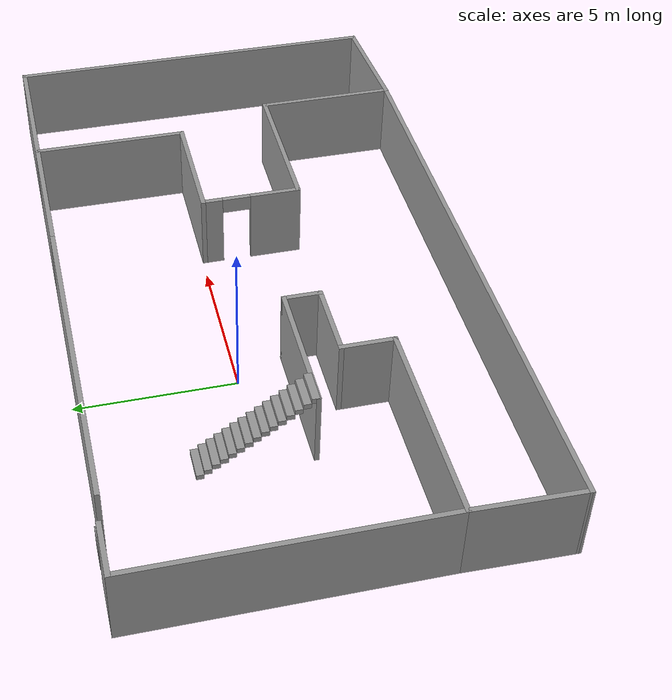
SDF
<?xml version='1.0'?>
<sdf version='1.6'>
  <model name='sample_room'>
    <pose frame=''>3.06893 -1.33194 0 0 -0 0</pose>
    <link name='Stairs_0'>
      <visual name='Stairs_0_Visual_0'>
        <pose frame=''>-5.98337 3.1343 0.083333 0 -0 0</pose>
        <geometry>
          <box>
            <size>1 0.233333 0.166667</size>
          </box>
        </geometry>
        <material>
          <script>
            <uri>file://media/materials/scripts/gazebo.material</uri>
            <name>Gazebo/Grey</name>
          </script>
          <ambient>1 1 1 1</ambient>
        </material>
      </visual>
      <collision name='Stairs_0_Collision_0'>
        <geometry>
          <box>
            <size>1 0.233333 0.166667</size>
          </box>
        </geometry>
        <pose frame=''>-5.98337 3.1343 0.083333 0 -0 0</pose>
      </collision>
      <visual name='Stairs_0_Visual_1'>
        <pose frame=''>-5.98337 2.90096 0.25 0 -0 0</pose>
        <geometry>
          <box>
            <size>1 0.233333 0.166667</size>
          </box>
        </geometry>
        <material>
          <script>
            <uri>file://media/materials/scripts/gazebo.material</uri>
            <name>Gazebo/Grey</name>
          </script>
          <ambient>1 1 1 1</ambient>
        </material>
      </visual>
      <collision name='Stairs_0_Collision_1'>
        <geometry>
          <box>
            <size>1 0.233333 0.166667</size>
          </box>
        </geometry>
        <pose frame=''>-5.98337 2.90096 0.25 0 -0 0</pose>
      </collision>
      <visual name='Stairs_0_Visual_2'>
        <pose frame=''>-5.98337 2.66763 0.416667 0 -0 0</pose>
        <geometry>
          <box>
            <size>1 0.233333 0.166667</size>
          </box>
        </geometry>
        <material>
          <script>
            <uri>file://media/materials/scripts/gazebo.material</uri>
            <name>Gazebo/Grey</name>
          </script>
          <ambient>1 1 1 1</ambient>
        </material>
      </visual>
      <collision name='Stairs_0_Collision_2'>
        <geometry>
          <box>
            <size>1 0.233333 0.166667</size>
          </box>
        </geometry>
        <pose frame=''>-5.98337 2.66763 0.416667 0 -0 0</pose>
      </collision>
      <visual name='Stairs_0_Visual_3'>
        <pose frame=''>-5.98337 2.4343 0.583333 0 -0 0</pose>
        <geometry>
          <box>
            <size>1 0.233333 0.166667</size>
          </box>
        </geometry>
        <material>
          <script>
            <uri>file://media/materials/scripts/gazebo.material</uri>
            <name>Gazebo/Grey</name>
          </script>
          <ambient>1 1 1 1</ambient>
        </material>
      </visual>
      <collision name='Stairs_0_Collision_3'>
        <geometry>
          <box>
            <size>1 0.233333 0.166667</size>
          </box>
        </geometry>
        <pose frame=''>-5.98337 2.4343 0.583333 0 -0 0</pose>
      </collision>
      <visual name='Stairs_0_Visual_4'>
        <pose frame=''>-5.98337 2.20097 0.75 0 -0 0</pose>
        <geometry>
          <box>
            <size>1 0.233333 0.166667</size>
          </box>
        </geometry>
        <material>
          <script>
            <uri>file://media/materials/scripts/gazebo.material</uri>
            <name>Gazebo/Grey</name>
          </script>
          <ambient>1 1 1 1</ambient>
        </material>
      </visual>
      <collision name='Stairs_0_Collision_4'>
        <geometry>
          <box>
            <size>1 0.233333 0.166667</size>
          </box>
        </geometry>
        <pose frame=''>-5.98337 2.20097 0.75 0 -0 0</pose>
      </collision>
      <visual name='Stairs_0_Visual_5'>
        <pose frame=''>-5.98337 1.96763 0.916667 0 -0 0</pose>
        <geometry>
          <box>
            <size>1 0.233333 0.166667</size>
          </box>
        </geometry>
        <material>
          <script>
            <uri>file://media/materials/scripts/gazebo.material</uri>
            <name>Gazebo/Grey</name>
          </script>
          <ambient>1 1 1 1</ambient>
        </material>
      </visual>
      <collision name='Stairs_0_Collision_5'>
        <geometry>
          <box>
            <size>1 0.233333 0.166667</size>
          </box>
        </geometry>
        <pose frame=''>-5.98337 1.96763 0.916667 0 -0 0</pose>
      </collision>
      <visual name='Stairs_0_Visual_6'>
        <pose frame=''>-5.98337 1.7343 1.08333 0 -0 0</pose>
        <geometry>
          <box>
            <size>1 0.233333 0.166667</size>
          </box>
        </geometry>
        <material>
          <script>
            <uri>file://media/materials/scripts/gazebo.material</uri>
            <name>Gazebo/Grey</name>
          </script>
          <ambient>1 1 1 1</ambient>
        </material>
      </visual>
      <collision name='Stairs_0_Collision_6'>
        <geometry>
          <box>
            <size>1 0.233333 0.166667</size>
          </box>
        </geometry>
        <pose frame=''>-5.98337 1.7343 1.08333 0 -0 0</pose>
      </collision>
      <visual name='Stairs_0_Visual_7'>
        <pose frame=''>-5.98337 1.50097 1.25 0 -0 0</pose>
        <geometry>
          <box>
            <size>1 0.233333 0.166667</size>
          </box>
        </geometry>
        <material>
          <script>
            <uri>file://media/materials/scripts/gazebo.material</uri>
            <name>Gazebo/Grey</name>
          </script>
          <ambient>1 1 1 1</ambient>
        </material>
      </visual>
      <collision name='Stairs_0_Collision_7'>
        <geometry>
          <box>
            <size>1 0.233333 0.166667</size>
          </box>
        </geometry>
        <pose frame=''>-5.98337 1.50097 1.25 0 -0 0</pose>
      </collision>
      <visual name='Stairs_0_Visual_8'>
        <pose frame=''>-5.98337 1.26763 1.41667 0 -0 0</pose>
        <geometry>
          <box>
            <size>1 0.233333 0.166667</size>
          </box>
        </geometry>
        <material>
          <script>
            <uri>file://media/materials/scripts/gazebo.material</uri>
            <name>Gazebo/Grey</name>
          </script>
          <ambient>1 1 1 1</ambient>
        </material>
      </visual>
      <collision name='Stairs_0_Collision_8'>
        <geometry>
          <box>
            <size>1 0.233333 0.166667</size>
          </box>
        </geometry>
        <pose frame=''>-5.98337 1.26763 1.41667 0 -0 0</pose>
      </collision>
      <visual name='Stairs_0_Visual_9'>
        <pose frame=''>-5.98337 1.0343 1.58333 0 -0 0</pose>
        <geometry>
          <box>
            <size>1 0.233333 0.166667</size>
          </box>
        </geometry>
        <material>
          <script>
            <uri>file://media/materials/scripts/gazebo.material</uri>
            <name>Gazebo/Grey</name>
          </script>
          <ambient>1 1 1 1</ambient>
        </material>
      </visual>
      <collision name='Stairs_0_Collision_9'>
        <geometry>
          <box>
            <size>1 0.233333 0.166667</size>
          </box>
        </geometry>
        <pose frame=''>-5.98337 1.0343 1.58333 0 -0 0</pose>
      </collision>
      <visual name='Stairs_0_Visual_10'>
        <pose frame=''>-5.98337 0.800965 1.75 0 -0 0</pose>
        <geometry>
          <box>
            <size>1 0.233333 0.166667</size>
          </box>
        </geometry>
        <material>
          <script>
            <uri>file://media/materials/scripts/gazebo.material</uri>
            <name>Gazebo/Grey</name>
          </script>
          <ambient>1 1 1 1</ambient>
        </material>
      </visual>
      <collision name='Stairs_0_Collision_10'>
        <geometry>
          <box>
            <size>1 0.233333 0.166667</size>
          </box>
        </geometry>
        <pose frame=''>-5.98337 0.800965 1.75 0 -0 0</pose>
      </collision>
      <visual name='Stairs_0_Visual_11'>
        <pose frame=''>-5.98337 0.567632 1.91667 0 -0 0</pose>
        <geometry>
          <box>
            <size>1 0.233333 0.166667</size>
          </box>
        </geometry>
        <material>
          <script>
            <uri>file://media/materials/scripts/gazebo.material</uri>
            <name>Gazebo/Grey</name>
          </script>
          <ambient>1 1 1 1</ambient>
        </material>
      </visual>
      <collision name='Stairs_0_Collision_11'>
        <geometry>
          <box>
            <size>1 0.233333 0.166667</size>
          </box>
        </geometry>
        <pose frame=''>-5.98337 0.567632 1.91667 0 -0 0</pose>
      </collision>
      <visual name='Stairs_0_Visual_12'>
        <pose frame=''>-5.98337 0.334299 2.08333 0 -0 0</pose>
        <geometry>
          <box>
            <size>1 0.233333 0.166667</size>
          </box>
        </geometry>
        <material>
          <script>
            <uri>file://media/materials/scripts/gazebo.material</uri>
            <name>Gazebo/Grey</name>
          </script>
          <ambient>1 1 1 1</ambient>
        </material>
      </visual>
      <collision name='Stairs_0_Collision_12'>
        <geometry>
          <box>
            <size>1 0.233333 0.166667</size>
          </box>
        </geometry>
        <pose frame=''>-5.98337 0.334299 2.08333 0 -0 0</pose>
      </collision>
      <visual name='Stairs_0_Visual_13'>
        <pose frame=''>-5.98337 0.100965 2.25 0 -0 0</pose>
        <geometry>
          <box>
            <size>1 0.233333 0.166667</size>
          </box>
        </geometry>
        <material>
          <script>
            <uri>file://media/materials/scripts/gazebo.material</uri>
            <name>Gazebo/Grey</name>
          </script>
          <ambient>1 1 1 1</ambient>
        </material>
      </visual>
      <collision name='Stairs_0_Collision_13'>
        <geometry>
          <box>
            <size>1 0.233333 0.166667</size>
          </box>
        </geometry>
        <pose frame=''>-5.98337 0.100965 2.25 0 -0 0</pose>
      </collision>
      <visual name='Stairs_0_Visual_14'>
        <pose frame=''>-5.98337 -0.132368 2.41667 0 -0 0</pose>
        <geometry>
          <box>
            <size>1 0.233333 0.166667</size>
          </box>
        </geometry>
        <material>
          <script>
            <uri>file://media/materials/scripts/gazebo.material</uri>
            <name>Gazebo/Grey</name>
          </script>
          <ambient>1 1 1 1</ambient>
        </material>
      </visual>
      <collision name='Stairs_0_Collision_14'>
        <geometry>
          <box>
            <size>1 0.233333 0.166667</size>
          </box>
        </geometry>
        <pose frame=''>-5.98337 -0.132368 2.41667 0 -0 0</pose>
      </collision>
    </link>
    <link name='Wall_1'>
      <collision name='Wall_1_Collision'>
        <geometry>
          <box>
            <size>4.25 0.15 2.5</size>
          </box>
        </geometry>
        <pose frame=''>0 0 1.25 0 -0 0</pose>
      </collision>
      <visual name='Wall_1_Visual'>
        <pose frame=''>0 0 1.25 0 -0 0</pose>
        <geometry>
          <box>
            <size>4.25 0.15 2.5</size>
          </box>
        </geometry>
        <material>
          <script>
            <uri>file://media/materials/scripts/gazebo.material</uri>
            <name>Gazebo/Grey</name>
          </script>
          <ambient>1 1 1 1</ambient>
        </material>
      </visual>
      <pose frame=''>-4.37477 -0.208857 0 0 -0 0</pose>
    </link>
    <link name='Wall_10'>
      <collision name='Wall_10_Collision'>
        <geometry>
          <box>
            <size>4.75 0.15 2.5</size>
          </box>
        </geometry>
        <pose frame=''>0 0 1.25 0 -0 0</pose>
      </collision>
      <visual name='Wall_10_Visual'>
        <pose frame=''>0 0 1.25 0 -0 0</pose>
        <geometry>
          <box>
            <size>4.75 0.15 2.5</size>
          </box>
        </geometry>
        <material>
          <script>
            <uri>file://media/materials/scripts/gazebo.material</uri>
            <name>Gazebo/Grey</name>
          </script>
          <ambient>1 1 1 1</ambient>
        </material>
      </visual>
      <pose frame=''>4.19884 6.1129 0 0 -0 0</pose>
    </link>
    <link name='Wall_11'>
      <collision name='Wall_11_Collision'>
        <geometry>
          <box>
            <size>5 0.15 2.5</size>
          </box>
        </geometry>
        <pose frame=''>0 0 1.25 0 -0 0</pose>
      </collision>
      <visual name='Wall_11_Visual'>
        <pose frame=''>0 0 1.25 0 -0 0</pose>
        <geometry>
          <box>
            <size>5 0.15 2.5</size>
          </box>
        </geometry>
        <material>
          <script>
            <uri>file://media/materials/scripts/gazebo.material</uri>
            <name>Gazebo/Grey</name>
          </script>
          <ambient>1 1 1 1</ambient>
        </material>
      </visual>
      <pose frame=''>6.49884 3.6879 0 0 0 -1.5708</pose>
    </link>
    <link name='Wall_12'>
      <collision name='Wall_12_Collision'>
        <geometry>
          <box>
            <size>4 0.15 2.5</size>
          </box>
        </geometry>
        <pose frame=''>0 0 1.25 0 -0 0</pose>
      </collision>
      <visual name='Wall_12_Visual'>
        <pose frame=''>0 0 1.25 0 -0 0</pose>
        <geometry>
          <box>
            <size>4 0.15 2.5</size>
          </box>
        </geometry>
        <material>
          <script>
            <uri>file://media/materials/scripts/gazebo.material</uri>
            <name>Gazebo/Grey</name>
          </script>
          <ambient>1 1 1 1</ambient>
        </material>
      </visual>
      <pose frame=''>4.57384 1.2629 0 0 -0 3.14159</pose>
    </link>
    <link name='Wall_13'>
      <pose frame=''>2.64884 -0.287099 0 0 0 -1.5708</pose>
      <visual name='Wall_13_Visual_0'>
        <pose frame=''>-1.27438 0 1.25 0 -0 0</pose>
        <geometry>
          <box>
            <size>0.701241 0.15 2.5</size>
          </box>
        </geometry>
        <material>
          <script>
            <uri>file://media/materials/scripts/gazebo.material</uri>
            <name>Gazebo/Grey</name>
          </script>
          <ambient>1 1 1 1</ambient>
        </material>
      </visual>
      <collision name='Wall_13_Collision_0'>
        <geometry>
          <box>
            <size>0.701241 0.15 2.5</size>
          </box>
        </geometry>
        <pose frame=''>-1.27438 0 1.25 0 -0 0</pose>
      </collision>
      <visual name='Wall_13_Visual_1'>
        <pose frame=''>0.80062 0 1.25 0 -0 0</pose>
        <geometry>
          <box>
            <size>1.64876 0.15 2.5</size>
          </box>
        </geometry>
        <material>
          <script>
            <uri>file://media/materials/scripts/gazebo.material</uri>
            <name>Gazebo/Grey</name>
          </script>
          <ambient>1 1 1 1</ambient>
        </material>
      </visual>
      <collision name='Wall_13_Collision_1'>
        <geometry>
          <box>
            <size>1.64876 0.15 2.5</size>
          </box>
        </geometry>
        <pose frame=''>0.80062 0 1.25 0 -0 0</pose>
      </collision>
      <visual name='Wall_13_Visual_2'>
        <pose frame=''>-0.473759 0 2.25 0 -0 0</pose>
        <geometry>
          <box>
            <size>0.9 0.15 0.5</size>
          </box>
        </geometry>
        <material>
          <script>
            <uri>file://media/materials/scripts/gazebo.material</uri>
            <name>Gazebo/Grey</name>
          </script>
          <ambient>1 1 1 1</ambient>
        </material>
      </visual>
      <collision name='Wall_13_Collision_2'>
        <geometry>
          <box>
            <size>0.9 0.15 0.5</size>
          </box>
        </geometry>
        <pose frame=''>-0.473759 0 2.25 0 -0 0</pose>
      </collision>
    </link>
    <link name='Wall_14'>
      <collision name='Wall_14_Collision'>
        <geometry>
          <box>
            <size>5 0.15 2.5</size>
          </box>
        </geometry>
        <pose frame=''>0 0 1.25 0 -0 0</pose>
      </collision>
      <visual name='Wall_14_Visual'>
        <pose frame=''>0 0 1.25 0 -0 0</pose>
        <geometry>
          <box>
            <size>5 0.15 2.5</size>
          </box>
        </geometry>
        <material>
          <script>
            <uri>file://media/materials/scripts/gazebo.material</uri>
            <name>Gazebo/Grey</name>
          </script>
          <ambient>1 1 1 1</ambient>
        </material>
      </visual>
      <pose frame=''>5.07384 -1.8371 0 0 -0 0</pose>
    </link>
    <link name='Wall_15'>
      <collision name='Wall_15_Collision'>
        <geometry>
          <box>
            <size>4.5 0.15 2.5</size>
          </box>
        </geometry>
        <pose frame=''>0 0 1.25 0 -0 0</pose>
      </collision>
      <visual name='Wall_15_Visual'>
        <pose frame=''>0 0 1.25 0 -0 0</pose>
        <geometry>
          <box>
            <size>4.5 0.15 2.5</size>
          </box>
        </geometry>
        <material>
          <script>
            <uri>file://media/materials/scripts/gazebo.material</uri>
            <name>Gazebo/Grey</name>
          </script>
          <ambient>1 1 1 1</ambient>
        </material>
      </visual>
      <pose frame=''>7.49884 -4.0121 0 0 0 -1.5708</pose>
    </link>
    <link name='Wall_16'>
      <collision name='Wall_16_Collision'>
        <geometry>
          <box>
            <size>18.75 0.15 2.5</size>
          </box>
        </geometry>
        <pose frame=''>0 0 1.25 0 -0 0</pose>
      </collision>
      <visual name='Wall_16_Visual'>
        <pose frame=''>0 0 1.25 0 -0 0</pose>
        <geometry>
          <box>
            <size>18.75 0.15 2.5</size>
          </box>
        </geometry>
        <material>
          <script>
            <uri>file://media/materials/scripts/gazebo.material</uri>
            <name>Gazebo/Grey</name>
          </script>
          <ambient>1 1 1 1</ambient>
        </material>
      </visual>
      <pose frame=''>-1.80116 -6.1871 0 0 -0 3.14159</pose>
    </link>
    <link name='Wall_17'>
      <collision name='Wall_17_Collision'>
        <geometry>
          <box>
            <size>3.42913 0.15 2.5</size>
          </box>
        </geometry>
        <pose frame=''>0 0 1.25 0 -0 0</pose>
      </collision>
      <visual name='Wall_17_Visual'>
        <pose frame=''>0 0 1.25 0 -0 0</pose>
        <geometry>
          <box>
            <size>3.42913 0.15 2.5</size>
          </box>
        </geometry>
        <material>
          <script>
            <uri>file://media/materials/scripts/gazebo.material</uri>
            <name>Gazebo/Grey</name>
          </script>
          <ambient>1 1 1 1</ambient>
        </material>
      </visual>
      <pose frame=''>-11.063 -4.54798 0 0 -0 1.5475</pose>
    </link>
    <link name='Wall_19'>
      <collision name='Wall_19_Collision'>
        <geometry>
          <box>
            <size>4.75 0.15 2.5</size>
          </box>
        </geometry>
        <pose frame=''>0 0 1.25 0 -0 0</pose>
      </collision>
      <visual name='Wall_19_Visual'>
        <pose frame=''>0 0 1.25 0 -0 0</pose>
        <geometry>
          <box>
            <size>4.75 0.15 2.5</size>
          </box>
        </geometry>
        <material>
          <script>
            <uri>file://media/materials/scripts/gazebo.material</uri>
            <name>Gazebo/Grey</name>
          </script>
          <ambient>1 1 1 1</ambient>
        </material>
      </visual>
      <pose frame=''>8.79884 6.1129 0 0 -0 0</pose>
    </link>
    <link name='Wall_2'>
      <collision name='Wall_2_Collision'>
        <geometry>
          <box>
            <size>1.25 0.15 2.5</size>
          </box>
        </geometry>
        <pose frame=''>0 0 1.25 0 -0 0</pose>
      </collision>
      <visual name='Wall_2_Visual'>
        <pose frame=''>0 0 1.25 0 -0 0</pose>
        <geometry>
          <box>
            <size>1.25 0.15 2.5</size>
          </box>
        </geometry>
        <material>
          <script>
            <uri>file://media/materials/scripts/gazebo.material</uri>
            <name>Gazebo/Grey</name>
          </script>
          <ambient>1 1 1 1</ambient>
        </material>
      </visual>
      <pose frame=''>-2.32477 -0.758857 0 0 0 -1.5708</pose>
    </link>
    <link name='Wall_20'>
      <collision name='Wall_20_Collision'>
        <geometry>
          <box>
            <size>12.25 0.15 2.5</size>
          </box>
        </geometry>
        <pose frame=''>0 0 1.25 0 -0 0</pose>
      </collision>
      <visual name='Wall_20_Visual'>
        <pose frame=''>0 0 1.25 0 -0 0</pose>
        <geometry>
          <box>
            <size>12.25 0.15 2.5</size>
          </box>
        </geometry>
        <material>
          <script>
            <uri>file://media/materials/scripts/gazebo.material</uri>
            <name>Gazebo/Grey</name>
          </script>
          <ambient>1 1 1 1</ambient>
        </material>
      </visual>
      <pose frame=''>11.0988 0.062901 0 0 0 -1.5708</pose>
    </link>
    <link name='Wall_21'>
      <collision name='Wall_21_Collision'>
        <geometry>
          <box>
            <size>3.75555 0.15 2.5</size>
          </box>
        </geometry>
        <pose frame=''>0 0 1.25 0 -0 0</pose>
      </collision>
      <visual name='Wall_21_Visual'>
        <pose frame=''>0 0 1.25 0 -0 0</pose>
        <geometry>
          <box>
            <size>3.75555 0.15 2.5</size>
          </box>
        </geometry>
        <material>
          <script>
            <uri>file://media/materials/scripts/gazebo.material</uri>
            <name>Gazebo/Grey</name>
          </script>
          <ambient>1 1 1 1</ambient>
        </material>
      </visual>
      <pose frame=''>9.29884 -6.0871 0 0 0 -3.08609</pose>
    </link>
    <link name='Wall_3'>
      <collision name='Wall_3_Collision'>
        <geometry>
          <box>
            <size>2.5 0.15 2.5</size>
          </box>
        </geometry>
        <pose frame=''>0 0 1.25 0 -0 0</pose>
      </collision>
      <visual name='Wall_3_Visual'>
        <pose frame=''>0 0 1.25 0 -0 0</pose>
        <geometry>
          <box>
            <size>2.5 0.15 2.5</size>
          </box>
        </geometry>
        <material>
          <script>
            <uri>file://media/materials/scripts/gazebo.material</uri>
            <name>Gazebo/Grey</name>
          </script>
          <ambient>1 1 1 1</ambient>
        </material>
      </visual>
      <pose frame=''>-3.49977 -1.30886 0 0 -0 3.14159</pose>
    </link>
    <link name='Wall_4'>
      <collision name='Wall_4_Collision'>
        <geometry>
          <box>
            <size>1.75 0.15 2.5</size>
          </box>
        </geometry>
        <pose frame=''>0 0 1.25 0 -0 0</pose>
      </collision>
      <visual name='Wall_4_Visual'>
        <pose frame=''>0 0 1.25 0 -0 0</pose>
        <geometry>
          <box>
            <size>1.75 0.15 2.5</size>
          </box>
        </geometry>
        <material>
          <script>
            <uri>file://media/materials/scripts/gazebo.material</uri>
            <name>Gazebo/Grey</name>
          </script>
          <ambient>1 1 1 1</ambient>
        </material>
      </visual>
      <pose frame=''>-4.67477 -2.10886 0 0 0 -1.5708</pose>
    </link>
    <link name='Wall_5'>
      <collision name='Wall_5_Collision'>
        <geometry>
          <box>
            <size>6.5 0.15 2.5</size>
          </box>
        </geometry>
        <pose frame=''>0 0 1.25 0 -0 0</pose>
      </collision>
      <visual name='Wall_5_Visual'>
        <pose frame=''>0 0 1.25 0 -0 0</pose>
        <geometry>
          <box>
            <size>6.5 0.15 2.5</size>
          </box>
        </geometry>
        <material>
          <script>
            <uri>file://media/materials/scripts/gazebo.material</uri>
            <name>Gazebo/Grey</name>
          </script>
          <ambient>1 1 1 1</ambient>
        </material>
      </visual>
      <pose frame=''>-7.84977 -2.90886 0 0 -0 3.14159</pose>
    </link>
    <link name='Wall_6'>
      <collision name='Wall_6_Collision'>
        <geometry>
          <box>
            <size>9.25 0.15 2.5</size>
          </box>
        </geometry>
        <pose frame=''>0 0 1.25 0 -0 0</pose>
      </collision>
      <visual name='Wall_6_Visual'>
        <pose frame=''>0 0 1.25 0 -0 0</pose>
        <geometry>
          <box>
            <size>9.25 0.15 2.5</size>
          </box>
        </geometry>
        <material>
          <script>
            <uri>file://media/materials/scripts/gazebo.material</uri>
            <name>Gazebo/Grey</name>
          </script>
          <ambient>1 1 1 1</ambient>
        </material>
      </visual>
      <pose frame=''>-11.0248 1.64114 0 0 -0 1.5708</pose>
    </link>
    <link name='Wall_7'>
      <collision name='Wall_7_Collision'>
        <geometry>
          <box>
            <size>1.75 0.15 2.5</size>
          </box>
        </geometry>
        <pose frame=''>0 0 1.25 0 -0 0</pose>
      </collision>
      <visual name='Wall_7_Visual'>
        <pose frame=''>0 0 1.25 0 -0 0</pose>
        <geometry>
          <box>
            <size>1.75 0.15 2.5</size>
          </box>
        </geometry>
        <material>
          <script>
            <uri>file://media/materials/scripts/gazebo.material</uri>
            <name>Gazebo/Grey</name>
          </script>
          <ambient>1 1 1 1</ambient>
        </material>
      </visual>
      <pose frame=''>-10.2248 6.19114 0 0 -0 0</pose>
    </link>
    <link name='Wall_9'>
      <collision name='Wall_9_Collision'>
        <geometry>
          <box>
            <size>10.5 0.15 2.5</size>
          </box>
        </geometry>
        <pose frame=''>0 0 1.25 0 -0 0</pose>
      </collision>
      <visual name='Wall_9_Visual'>
        <pose frame=''>0 0 1.25 0 -0 0</pose>
        <geometry>
          <box>
            <size>10.5 0.15 2.5</size>
          </box>
        </geometry>
        <material>
          <script>
            <uri>file://media/materials/scripts/gazebo.material</uri>
            <name>Gazebo/Grey</name>
          </script>
          <ambient>1 1 1 1</ambient>
        </material>
      </visual>
      <pose frame=''>-3.27616 6.1129 0 0 -0 0</pose>
    </link>
    <link name='Window_0'>
      <collision name='Window_0_Collision'>
        <geometry>
          <box>
            <size>0.8 0.17 0.8</size>
          </box>
        </geometry>
        <pose frame=''>0 0 0.4 0 -0 0</pose>
      </collision>
      <visual name='Window_0_Visual'>
        <pose frame=''>0 0 0.4 0 -0 0</pose>
        <geometry>
          <box>
            <size>0.8 0.17 0.8</size>
          </box>
        </geometry>
        <material>
          <script>
            <uri>file://media/materials/scripts/gazebo.material</uri>
            <name>Gazebo/Grey</name>
          </script>
        </material>
      </visual>
      <pose frame=''>-8.93663 6.19381 0.5 0 -0 0</pose>
    </link>
    <static>1</static>
  </model>
</sdf>
